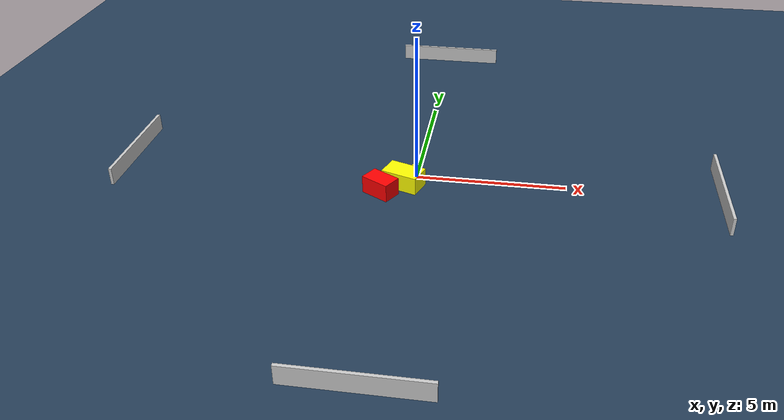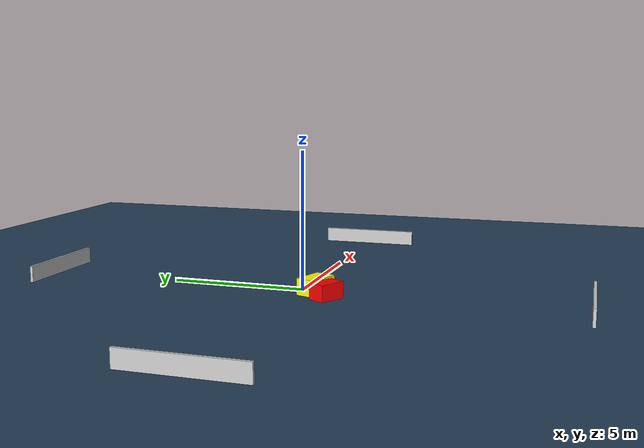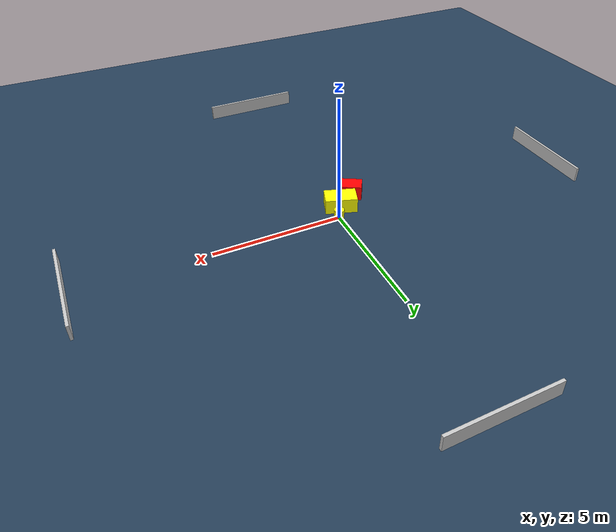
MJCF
<?xml version="1.0" ?>
<mujoco model="generated_environment">
  <option timestep="0.01" integrator="RK4" cone="elliptic"/>
  <default>
    <geom density="1"/>
  </default>
  <asset>
    <texture builtin="gradient" height="3072" name="skybox" rgb1="0.3 0.5 0.7" rgb2="0 0 0" type="skybox" width="512"/>
    <texture builtin="checker" height="300" name="groundplane" rgb1="0.2 0.3 0.4" rgb2="0.1 0.2 0.3" type="2d" width="300"/>
    <material name="groundplane" reflectance="0.2" texrepeat="5 5" texture="groundplane"/>
  </asset>
  <worldbody>
    <light dir="0 0 -1" directional="true" pos="0 0 1.5"/>
    <geom condim="3" friction="0.5 0.005 0.001" material="groundplane" name="floor" pos="0 0 0" size="0 0 0.05" type="plane"/>
    <body name="walls">
      <geom name="wall_1" condim="4" pos="-10.0 0.0 0.3" rgba="0.800000011920929 0.800000011920929 0.800000011920929 1.0" size="0.05 2.0 0.3" type="box"/>
      <geom name="wall_2" condim="4" pos="10.0 0.0 0.3" rgba="0.800000011920929 0.800000011920929 0.800000011920929 1.0" size="0.05 2.0 0.3" type="box"/>
      <geom name="wall_3" condim="4" pos="0.0 -10.0 0.3" rgba="0.800000011920929 0.800000011920929 0.800000011920929 1.0" size="2.0 0.05 0.3" type="box"/>
      <geom name="wall_4" condim="4" pos="0.0 10.0 0.3" rgba="0.800000011920929 0.800000011920929 0.800000011920929 1.0" size="2.0 0.05 0.3" type="box"/>
    </body>
    <body name="robot">
      <joint name="joint_x" type="slide" pos="0 0 0" axis="1 0 0"/>
      <joint name="joint_y" type="slide" pos="0 0 0" axis="0 1 0"/>
      <geom name="robot" type="cylinder" pos="0.0 0.0 0.2" size="0.2 0.2 0.0" mass="5.0" friction="1.0 0.005 0.0001" condim="4" rgba="1.0 1.0 0.0 1.0"/>
    </body>
    <body name="obstacle_1_movable">
      <geom name="obstacle_1_movable" condim="4" pos="-0.3541269181361909 -0.5999806418954821 0.3" euler="0 0 341.1148835436848" friction="0.0 0.005 0.001" rgba="1.0 1.0 0.0 1.0" size="0.6238226873838608 0.3824757268827128 0.3" type="box" mass="0.1"/>
      <joint type="free"/>
    </body>
    <body name="obstacle_2_static">
      <geom name="obstacle_2_static" condim="4" pos="-1.0274874161903595 -1.1955033105597268 0.3" euler="0 0 329.8666243292298" friction="0.0 0.005 0.001" rgba="1.0 0.0 0.0 1.0" size="0.5073571488809809 0.31779237534136906 0.3" type="box"/>
    </body>
  </worldbody>
  <actuator>
    <motor name="actuator_x" joint="joint_x" gear="1" ctrlrange="-1 1"/>
    <motor name="actuator_y" joint="joint_y" gear="1" ctrlrange="-1 1"/>
  </actuator>
</mujoco>
